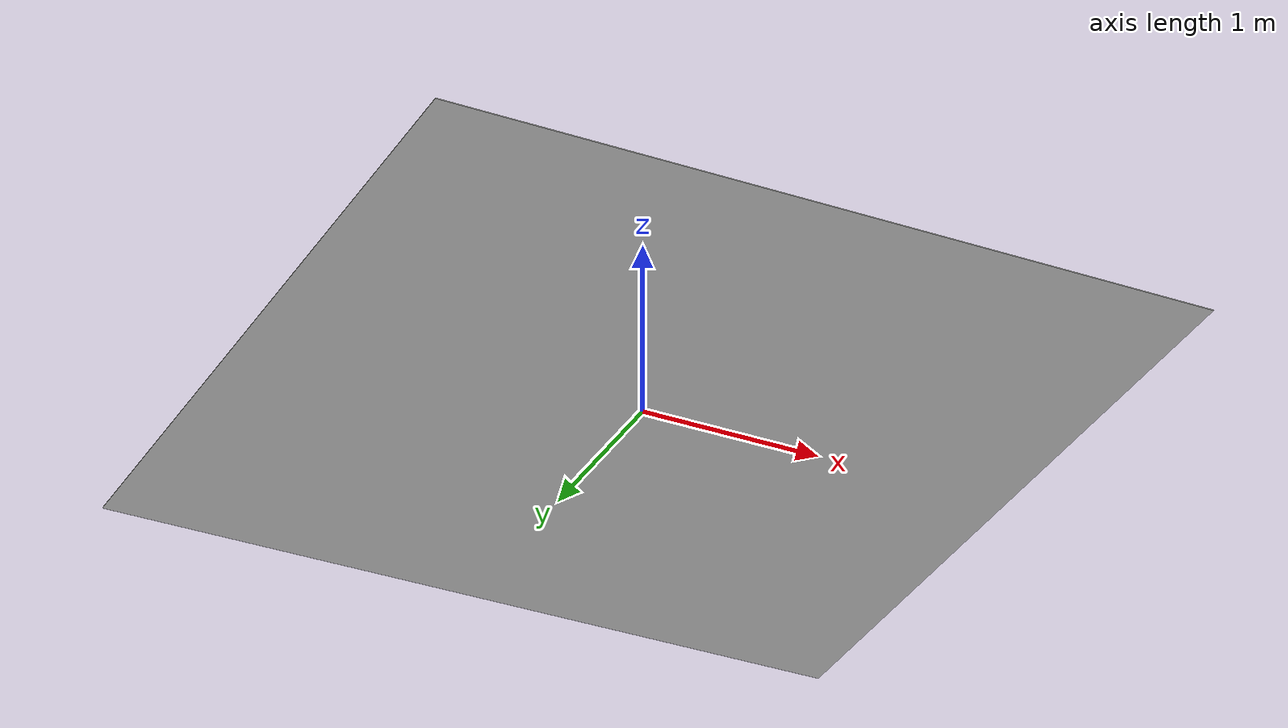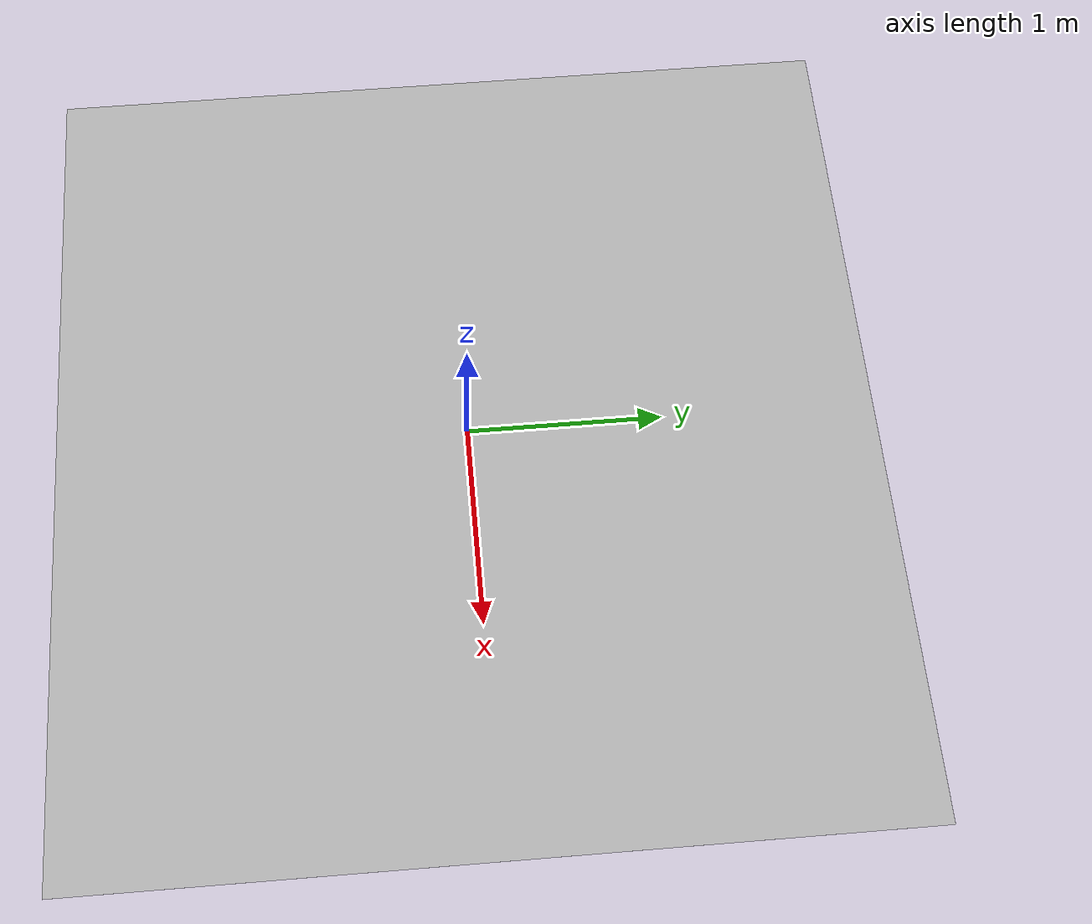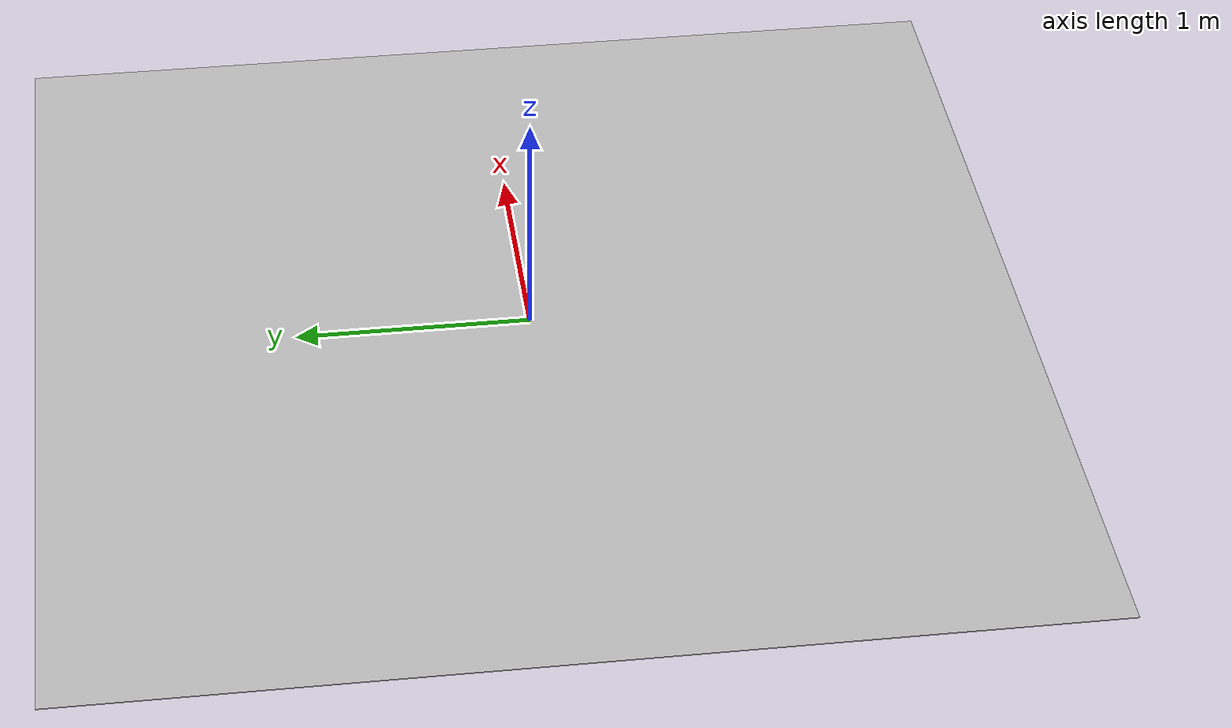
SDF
<?xml version="1.0" ?>
<sdf version="1.6">
  <model name="map_plane">
    <static>true</static> <!-- 地面静止不动 -->
    <link name="link">
      <!-- 视觉部分 -->
      <visual name="visual">
        <geometry>
          <plane>
            <normal>0 0 1</normal>
            <size>4.2 4.2</size> <!-- 修改平面大小为 4.2x4.2 -->
          </plane>
        </geometry>
        <material>
          <script>
            <uri>model://map_plane/materials/scripts</uri>
            <uri>model://map_plane/materials/textures</uri>
            <name>map/material</name>  <!-- 对应 map.material 中定义的名称 -->
          </script>
        </material>
      </visual>

      <!-- 碰撞部分 -->
      <collision name="collision">
        <geometry>
          <plane>
            <normal>0 0 1</normal>  <!-- 确保碰撞体与视觉体的朝向一致 -->
            <size>4.2 4.2</size> <!-- 修改碰撞体的大小为 4.2x4.2 -->
          </plane>
        </geometry>
      </collision>
    </link>
  </model>
</sdf>
